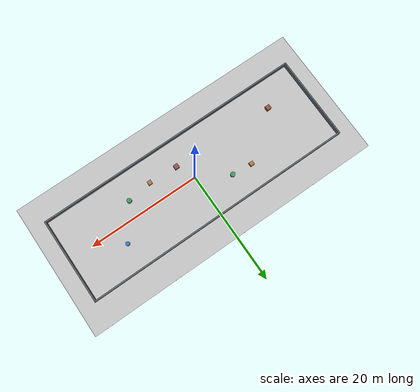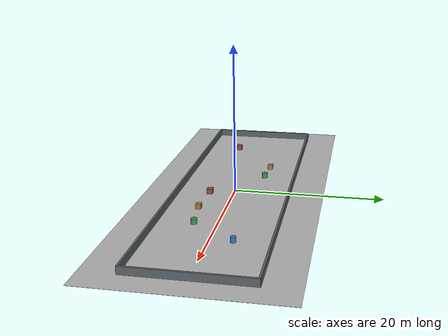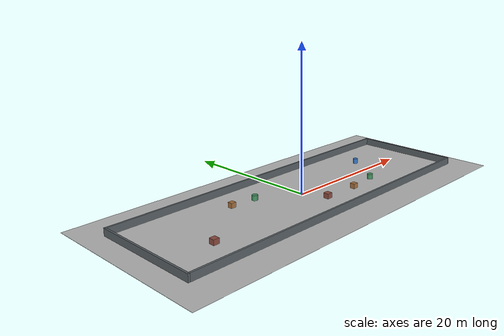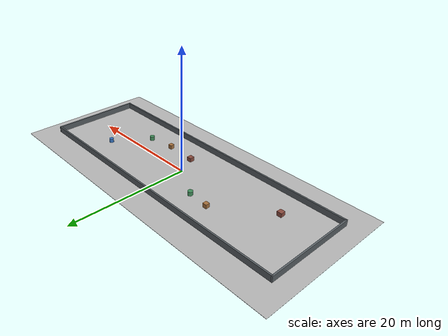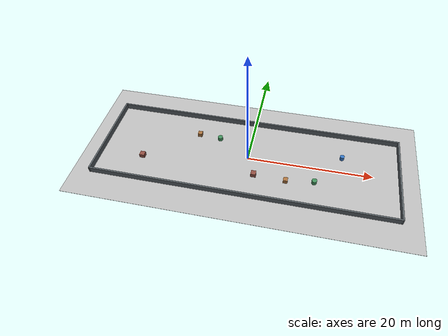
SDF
<?xml version="1.0"?>
<sdf version="1.6">
  <world name="default">
    <gravity>0 0 -9.8</gravity>
    <physics default="0" name="default_physics" type="ode">
      <max_step_size>0.001</max_step_size>
      <real_time_factor>1</real_time_factor>
      <real_time_update_rate>1000</real_time_update_rate>
    </physics>

    <include>
      <uri>model://sun</uri>
    </include>

    <model name="ground_plane">
      <static>true</static>
      <link name="link">
        <collision name="collision">
          <geometry>
            <box>
              <size>54 24 0.02</size>
            </box>
          </geometry>
        </collision>
        <visual name="visual">
          <geometry>
            <box>
              <size>54 24 0.02</size>
            </box>
          </geometry>
          <material>
            <ambient>0.72 0.72 0.72 1</ambient>
            <diffuse>0.72 0.72 0.72 1</diffuse>
          </material>
        </visual>
      </link>
    </model>

    <model name="corridor_wall_north">
      <static>true</static>
      <pose>0 7.50 0.5 0 0 0</pose>
      <link name="link">
        <collision name="collision">
          <geometry>
            <box>
              <size>48 0.25 1.0</size>
            </box>
          </geometry>
        </collision>
        <visual name="visual">
          <geometry>
            <box>
              <size>48 0.25 1.0</size>
            </box>
          </geometry>
          <material>
            <ambient>0.35 0.38 0.40 1</ambient>
            <diffuse>0.35 0.38 0.40 1</diffuse>
          </material>
        </visual>
      </link>
    </model>

    <model name="corridor_wall_south">
      <static>true</static>
      <pose>0 -7.50 0.5 0 0 0</pose>
      <link name="link">
        <collision name="collision">
          <geometry>
            <box>
              <size>48 0.25 1.0</size>
            </box>
          </geometry>
        </collision>
        <visual name="visual">
          <geometry>
            <box>
              <size>48 0.25 1.0</size>
            </box>
          </geometry>
          <material>
            <ambient>0.35 0.38 0.40 1</ambient>
            <diffuse>0.35 0.38 0.40 1</diffuse>
          </material>
        </visual>
      </link>
    </model>

    <model name="corridor_end_west">
      <static>true</static>
      <pose>-24 0 0.5 0 0 0</pose>
      <link name="link">
        <collision name="collision">
          <geometry>
            <box>
              <size>0.25 15.25 1.0</size>
            </box>
          </geometry>
        </collision>
        <visual name="visual">
          <geometry>
            <box>
              <size>0.25 15.25 1.0</size>
            </box>
          </geometry>
          <material>
            <ambient>0.35 0.38 0.40 1</ambient>
            <diffuse>0.35 0.38 0.40 1</diffuse>
          </material>
        </visual>
      </link>
    </model>

    <model name="corridor_end_east">
      <static>true</static>
      <pose>24 0 0.5 0 0 0</pose>
      <link name="link">
        <collision name="collision">
          <geometry>
            <box>
              <size>0.25 15.25 1.0</size>
            </box>
          </geometry>
        </collision>
        <visual name="visual">
          <geometry>
            <box>
              <size>0.25 15.25 1.0</size>
            </box>
          </geometry>
          <material>
            <ambient>0.35 0.38 0.40 1</ambient>
            <diffuse>0.35 0.38 0.40 1</diffuse>
          </material>
        </visual>
      </link>
    </model>

    <model name="corridor_obstacle_left">
      <static>true</static>
      <pose>-9.0 3.45 0.35 0 0 0</pose>
      <link name="link">
        <collision name="collision">
          <geometry>
            <box>
              <size>0.7 0.7 0.7</size>
            </box>
          </geometry>
        </collision>
        <visual name="visual">
          <geometry>
            <box>
              <size>0.7 0.7 0.7</size>
            </box>
          </geometry>
          <material>
            <ambient>0.65 0.44 0.24 1</ambient>
            <diffuse>0.65 0.44 0.24 1</diffuse>
          </material>
        </visual>
      </link>
    </model>

    <model name="corridor_obstacle_right">
      <static>true</static>
      <pose>6.6 -3.45 0.35 0 0 0</pose>
      <link name="link">
        <collision name="collision">
          <geometry>
            <box>
              <size>0.7 0.7 0.7</size>
            </box>
          </geometry>
        </collision>
        <visual name="visual">
          <geometry>
            <box>
              <size>0.7 0.7 0.7</size>
            </box>
          </geometry>
          <material>
            <ambient>0.65 0.44 0.24 1</ambient>
            <diffuse>0.65 0.44 0.24 1</diffuse>
          </material>
        </visual>
      </link>
    </model>

    <model name="corridor_obstacle_center">
      <static>true</static>
      <pose>15.0 2.85 0.35 0 0 0</pose>
      <link name="link">
        <collision name="collision">
          <geometry>
            <cylinder>
              <radius>0.35</radius>
              <length>0.7</length>
            </cylinder>
          </geometry>
        </collision>
        <visual name="visual">
          <geometry>
            <cylinder>
              <radius>0.35</radius>
              <length>0.7</length>
            </cylinder>
          </geometry>
          <material>
            <ambient>0.20 0.45 0.75 1</ambient>
            <diffuse>0.20 0.45 0.75 1</diffuse>
          </material>
        </visual>
      </link>
    </model>

    <model name="corridor_obstacle_extra_west">
      <static>true</static>
      <pose>-17.0 -2.85 0.35 0 0 0</pose>
      <link name="link">
        <collision name="collision">
          <geometry>
            <box>
              <size>0.8 0.8 0.7</size>
            </box>
          </geometry>
        </collision>
        <visual name="visual">
          <geometry>
            <box>
              <size>0.8 0.8 0.7</size>
            </box>
          </geometry>
          <material>
            <ambient>0.55 0.30 0.25 1</ambient>
            <diffuse>0.55 0.30 0.25 1</diffuse>
          </material>
        </visual>
      </link>
    </model>

    <model name="corridor_obstacle_extra_mid_north">
      <static>true</static>
      <pose>-5.4 3.15 0.35 0 0 0</pose>
      <link name="link">
        <collision name="collision">
          <geometry>
            <cylinder>
              <radius>0.40</radius>
              <length>0.7</length>
            </cylinder>
          </geometry>
        </collision>
        <visual name="visual">
          <geometry>
            <cylinder>
              <radius>0.40</radius>
              <length>0.7</length>
            </cylinder>
          </geometry>
          <material>
            <ambient>0.25 0.55 0.35 1</ambient>
            <diffuse>0.25 0.55 0.35 1</diffuse>
          </material>
        </visual>
      </link>
    </model>

    <model name="corridor_obstacle_extra_mid_south">
      <static>true</static>
      <pose>1.5 -3.20 0.35 0 0 0</pose>
      <link name="link">
        <collision name="collision">
          <geometry>
            <box>
              <size>0.8 0.8 0.7</size>
            </box>
          </geometry>
        </collision>
        <visual name="visual">
          <geometry>
            <box>
              <size>0.8 0.8 0.7</size>
            </box>
          </geometry>
          <material>
            <ambient>0.55 0.30 0.25 1</ambient>
            <diffuse>0.55 0.30 0.25 1</diffuse>
          </material>
        </visual>
      </link>
    </model>

    <model name="corridor_obstacle_extra_east">
      <static>true</static>
      <pose>11.0 -2.85 0.35 0 0 0</pose>
      <link name="link">
        <collision name="collision">
          <geometry>
            <cylinder>
              <radius>0.40</radius>
              <length>0.7</length>
            </cylinder>
          </geometry>
        </collision>
        <visual name="visual">
          <geometry>
            <cylinder>
              <radius>0.40</radius>
              <length>0.7</length>
            </cylinder>
          </geometry>
          <material>
            <ambient>0.25 0.55 0.35 1</ambient>
            <diffuse>0.25 0.55 0.35 1</diffuse>
          </material>
        </visual>
      </link>
    </model>

    <light name="ceiling_light" type="point">
      <pose>0 0 18 0 0 0</pose>
      <diffuse>0.8 0.8 0.8 1</diffuse>
      <specular>0.2 0.2 0.2 1</specular>
      <attenuation>
        <range>90</range>
        <constant>0.4</constant>
        <linear>0.02</linear>
        <quadratic>0.001</quadratic>
      </attenuation>
      <cast_shadows>1</cast_shadows>
    </light>

    <gui fullscreen="0">
      <camera name="user_camera">
        <pose>0 -21 30 0 0.95 1.57</pose>
        <view_controller>orbit</view_controller>
        <projection_type>perspective</projection_type>
      </camera>
    </gui>
  </world>
</sdf>
